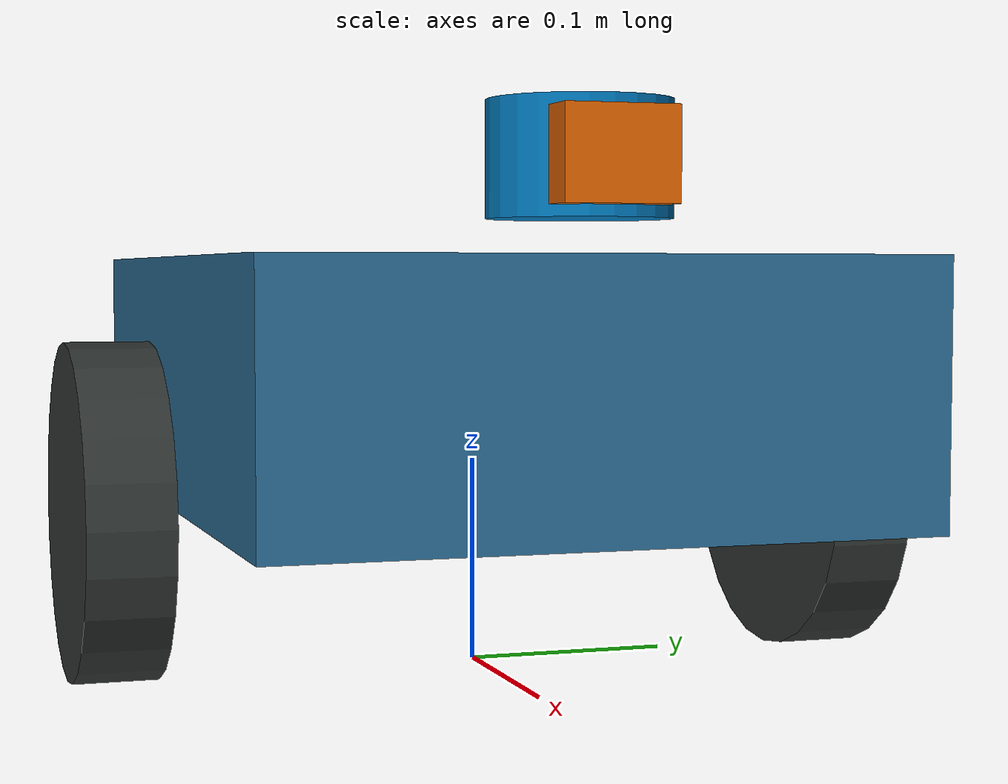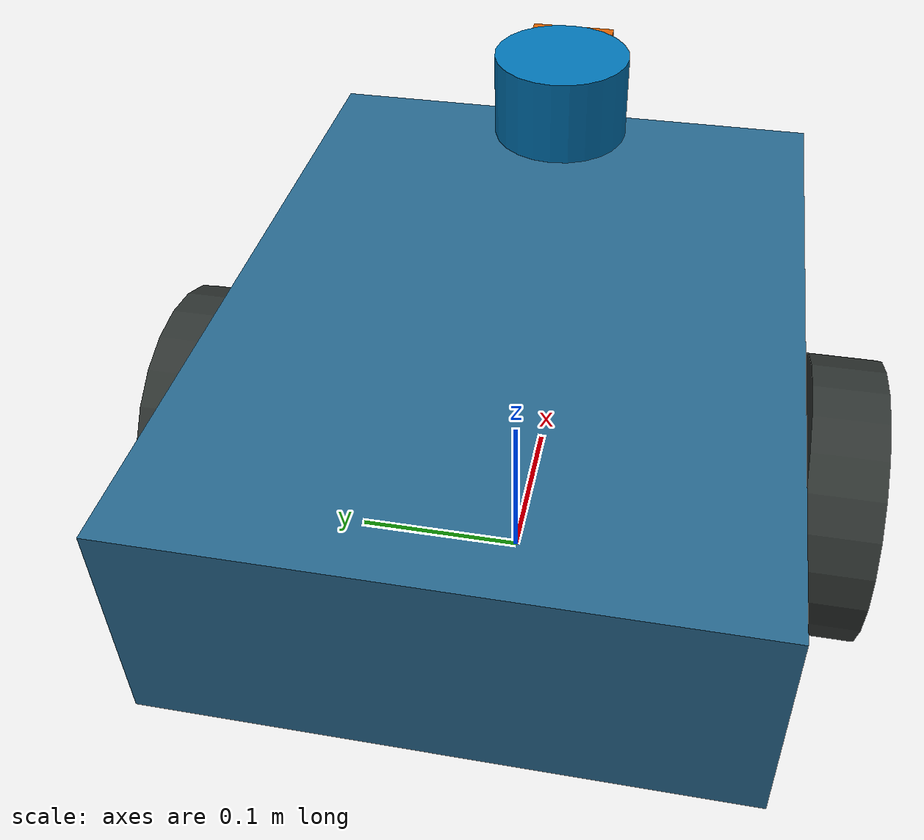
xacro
<?xml version="1.0"?>
<!-- 原创显示/TF/惯量数值练习；几何与质量是假设，不是某台真实机器人标定。 -->
<!-- xyz及半径/轮距m，rpy/关节位置rad，质量kg，惯量kg*m^2。 -->
<!-- 输入：两个Xacro参数；输出普通URDF。单独xacro只展开，有限范围由launch入口另验。 -->
<robot xmlns:xacro="http://www.ros.org/wiki/xacro" name="learning_wheeled_model">
  <xacro:arg name="wheel_radius" default="0.08"/>
  <xacro:arg name="wheel_separation" default="0.36"/>
  <xacro:property name="r" value="${float('$(arg wheel_radius)')}"/>
  <xacro:property name="separation" value="${float('$(arg wheel_separation)')}"/>
  <xacro:property name="width" value="0.04"/>
  <xacro:property name="pi_rad" value="3.141592653589793"/>

  <!-- 均匀实心盒体，惯性系与几何中心/轴重合；交叉项在这些假设下为零。 -->
  <xacro:macro name="box_inertial" params="mass x y z">
    <inertial><origin xyz="0 0 0" rpy="0 0 0"/><mass value="${mass}"/>
      <inertia ixx="${mass*(y*y+z*z)/12}" ixy="0" ixz="0"
               iyy="${mass*(x*x+z*z)/12}" iyz="0" izz="${mass*(x*x+y*y)/12}"/>
    </inertial>
  </xacro:macro>
  <!-- base_footprint仅是无质量参考系，避免把根刚体惯量交给不支持它的KDL树。 -->
  <link name="base_footprint"/>
  <link name="base_link">
    <visual><geometry><box size="0.4 0.3 0.12"/></geometry>
      <material name="body"><color rgba="0.15 0.4 0.55 1"/></material></visual>
    <collision><geometry><box size="0.4 0.3 0.12"/></geometry></collision>
    <xacro:box_inertial mass="3.0" x="0.4" y="0.3" z="0.12"/>
  </link>
  <joint name="footprint_to_base" type="fixed">
    <parent link="base_footprint"/><child link="base_link"/>
    <!-- 平地几何约定：轮心离地r，车体中心比轮心高0.06m；不是地面接触仿真。 -->
    <origin xyz="0 0 ${r+0.06}" rpy="0 0 0"/>
  </joint>

  <xacro:macro name="wheel" params="side sign">
    <link name="${side}_wheel">
      <!-- cylinder固有轴沿Z，visual/collision各自绕X旋转-π/2后沿关节Y轴。 -->
      <visual><origin xyz="0 0 0" rpy="${-pi_rad/2} 0 0"/>
        <geometry><cylinder radius="${r}" length="${width}"/></geometry>
        <material name="wheel_color"><color rgba="0.18 0.2 0.19 1"/></material></visual>
      <collision><origin xyz="0 0 0" rpy="${-pi_rad/2} 0 0"/>
        <geometry><cylinder radius="${r}" length="${width}"/></geometry></collision>
      <!-- 均匀圆柱轴已沿Y；不要只旋转外观却仍把轴向惯量放到Izz。 -->
      <inertial><origin xyz="0 0 0" rpy="0 0 0"/><mass value="0.2"/>
        <inertia ixx="${0.2*(3*r*r+width*width)/12}" ixy="0" ixz="0"
                 iyy="${0.2*r*r/2}" iyz="0" izz="${0.2*(3*r*r+width*width)/12}"/></inertial>
    </link>
    <joint name="${side}_wheel_joint" type="continuous">
      <parent link="base_link"/><child link="${side}_wheel"/>
      <origin xyz="0 ${sign*separation/2} -0.06" rpy="0 0 0"/>
      <!-- 左右均绕各自关节坐标+Y；镜像位置不自动反转状态正号。 -->
      <axis xyz="0 1 0"/>
      <!-- 数值仅作模型上限示例：effort N*m、velocity rad/s；此处无实际控制器。 -->
      <limit effort="2.0" velocity="10.0"/>
    </joint>
  </xacro:macro>
  <xacro:wheel side="left" sign="1"/>
  <xacro:wheel side="right" sign="-1"/>

  <link name="laser">
    <visual><geometry><cylinder radius="0.04" length="0.05"/></geometry></visual>
    <collision><geometry><cylinder radius="0.04" length="0.05"/></geometry></collision>
    <inertial><origin xyz="0 0 0"/><mass value="0.1"/>
      <inertia ixx="${0.1*(3*0.04*0.04+0.05*0.05)/12}" ixy="0" ixz="0"
               iyy="${0.1*(3*0.04*0.04+0.05*0.05)/12}" iyz="0" izz="${0.1*0.04*0.04/2}"/></inertial>
  </link>
  <joint name="base_to_laser" type="fixed"><parent link="base_link"/><child link="laser"/>
    <origin xyz="0.15 0 0.1" rpy="0 0 0"/></joint>
  <link name="camera_link">
    <visual><geometry><box size="0.04 0.05 0.04"/></geometry></visual>
    <collision><geometry><box size="0.04 0.05 0.04"/></geometry></collision>
    <xacro:box_inertial mass="0.1" x="0.04" y="0.05" z="0.04"/>
  </link>
  <joint name="base_to_camera" type="fixed"><parent link="base_link"/><child link="camera_link"/>
    <origin xyz="0.18 0 0.1" rpy="0 0 0"/></joint>
  <!-- 光学frame仅表达轴：Z前、X右、Y下；无相机插件、图像或额外刚体质量。 -->
  <link name="camera_optical_frame"/>
  <joint name="camera_to_optical" type="fixed"><parent link="camera_link"/><child link="camera_optical_frame"/>
    <origin xyz="0 0 0" rpy="${-pi_rad/2} 0 ${-pi_rad/2}"/></joint>
</robot>
